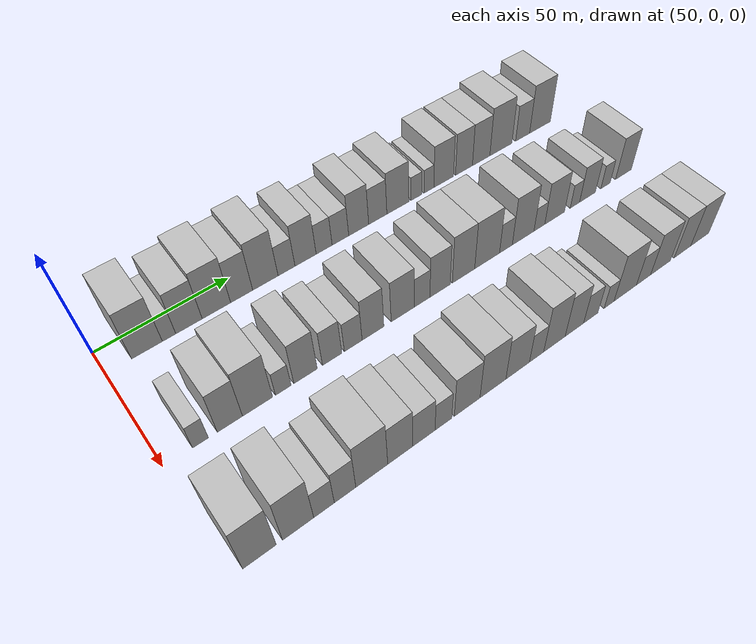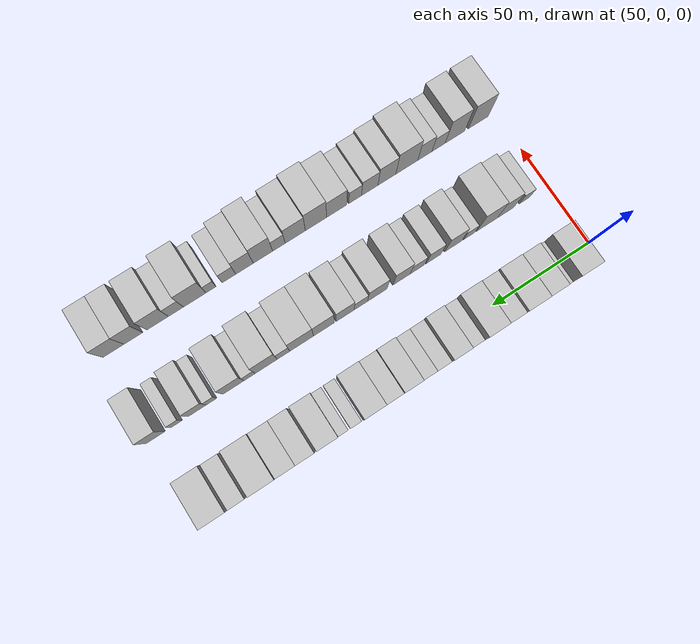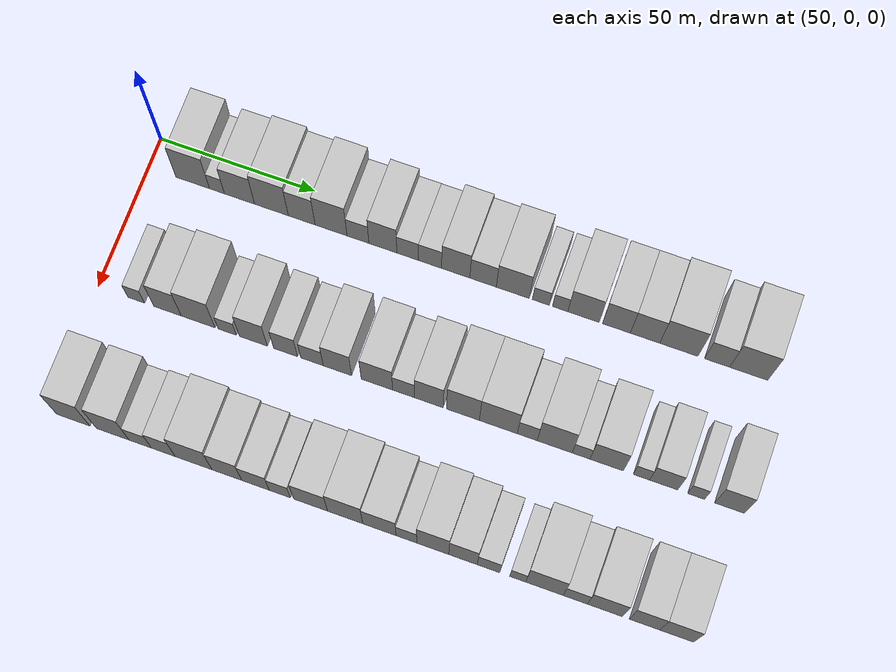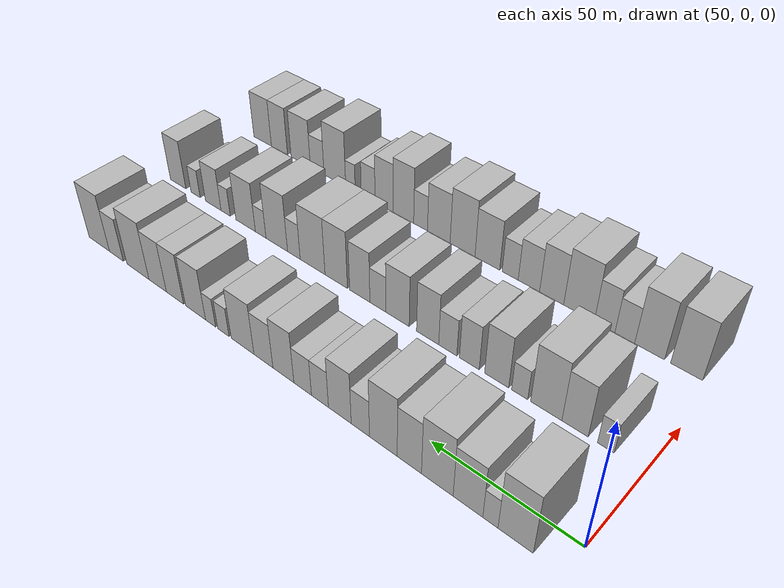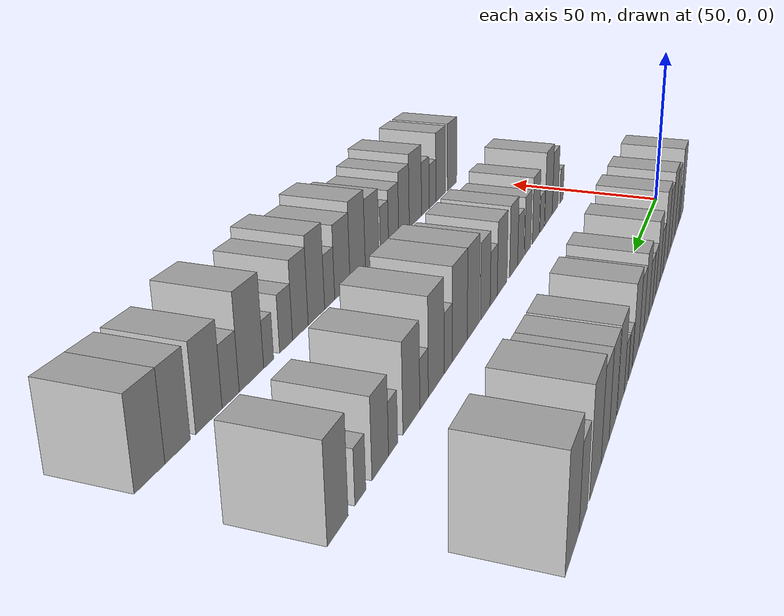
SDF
<sdf version="1.6">
 <world name="default">
  <model name="building_47">
   <static>1</static>
   <pose>50.0000 14.3756 0 0.000000 0.000000 0.000000</pose>
   <link name="link">
    <pose>0 0 12.00 0 0 0</pose>
    <collision name="collision"><geometry><box><size>20.0000 10.8852 24.0000</size></box></geometry></collision>
    <visual name="visual">
     <cast_shadows>0</cast_shadows>
     <geometry><box><size>20.0000 10.8852 24.0000</size></box></geometry>
     <material>
      <script>
       <uri>model://HANNAS_wall/materials/scripts</uri>
       <uri>model://HANNAS_wall/materials/textures</uri>
       <name>vrc/HANNAS_wall</name>
      </script>
     </material>
    </visual>
   </link>
  </model>
  <model name="building_48">
   <static>1</static>
   <pose>50.0000 22.2408 0 0.000000 0.000000 0.000000</pose>
   <link name="link">
    <pose>0 0 6.00 0 0 0</pose>
    <collision name="collision"><geometry><box><size>20.0000 4.8451 12.0000</size></box></geometry></collision>
    <visual name="visual">
     <cast_shadows>0</cast_shadows>
     <geometry><box><size>20.0000 4.8451 12.0000</size></box></geometry>
     <material>
      <script>
       <uri>model://HANNAS_wall/materials/scripts</uri>
       <uri>model://HANNAS_wall/materials/textures</uri>
       <name>vrc/HANNAS_wall</name>
      </script>
     </material>
    </visual>
   </link>
  </model>
  <model name="building_49">
   <static>1</static>
   <pose>50.0000 29.5341 0 0.000000 0.000000 0.000000</pose>
   <link name="link">
    <pose>0 0 10.50 0 0 0</pose>
    <collision name="collision"><geometry><box><size>20.0000 9.7415 21.0000</size></box></geometry></collision>
    <visual name="visual">
     <cast_shadows>0</cast_shadows>
     <geometry><box><size>20.0000 9.7415 21.0000</size></box></geometry>
     <material>
      <script>
       <uri>model://HANNAS_wall/materials/scripts</uri>
       <uri>model://HANNAS_wall/materials/textures</uri>
       <name>vrc/HANNAS_wall</name>
      </script>
     </material>
    </visual>
   </link>
  </model>
  <model name="building_50">
   <static>1</static>
   <pose>50.0000 39.8202 0 0.000000 0.000000 0.000000</pose>
   <link name="link">
    <pose>0 0 12.00 0 0 0</pose>
    <collision name="collision"><geometry><box><size>20.0000 10.8306 24.0000</size></box></geometry></collision>
    <visual name="visual">
     <cast_shadows>0</cast_shadows>
     <geometry><box><size>20.0000 10.8306 24.0000</size></box></geometry>
     <material>
      <script>
       <uri>model://HANNAS_wall/materials/scripts</uri>
       <uri>model://HANNAS_wall/materials/textures</uri>
       <name>vrc/HANNAS_wall</name>
      </script>
     </material>
    </visual>
   </link>
  </model>
  <model name="building_51">
   <static>1</static>
   <pose>50.0000 49.5465 0 0.000000 0.000000 0.000000</pose>
   <link name="link">
    <pose>0 0 10.50 0 0 0</pose>
    <collision name="collision"><geometry><box><size>20.0000 8.6221 21.0000</size></box></geometry></collision>
    <visual name="visual">
     <cast_shadows>0</cast_shadows>
     <geometry><box><size>20.0000 8.6221 21.0000</size></box></geometry>
     <material>
      <script>
       <uri>model://HANNAS_wall/materials/scripts</uri>
       <uri>model://HANNAS_wall/materials/textures</uri>
       <name>vrc/HANNAS_wall</name>
      </script>
     </material>
    </visual>
   </link>
  </model>
  <model name="building_52">
   <static>1</static>
   <pose>50.0000 58.9606 0 0.000000 0.000000 0.000000</pose>
   <link name="link">
    <pose>0 0 12.00 0 0 0</pose>
    <collision name="collision"><geometry><box><size>20.0000 10.2061 24.0000</size></box></geometry></collision>
    <visual name="visual">
     <cast_shadows>0</cast_shadows>
     <geometry><box><size>20.0000 10.2061 24.0000</size></box></geometry>
     <material>
      <script>
       <uri>model://HANNAS_wall/materials/scripts</uri>
       <uri>model://HANNAS_wall/materials/textures</uri>
       <name>vrc/HANNAS_wall</name>
      </script>
     </material>
    </visual>
   </link>
  </model>
  <model name="building_53">
   <static>1</static>
   <pose>50.0000 67.5459 0 0.000000 0.000000 0.000000</pose>
   <link name="link">
    <pose>0 0 7.50 0 0 0</pose>
    <collision name="collision"><geometry><box><size>20.0000 6.9645 15.0000</size></box></geometry></collision>
    <visual name="visual">
     <cast_shadows>0</cast_shadows>
     <geometry><box><size>20.0000 6.9645 15.0000</size></box></geometry>
     <material>
      <script>
       <uri>model://HANNAS_wall/materials/scripts</uri>
       <uri>model://HANNAS_wall/materials/textures</uri>
       <name>vrc/HANNAS_wall</name>
      </script>
     </material>
    </visual>
   </link>
  </model>
  <model name="building_54">
   <static>1</static>
   <pose>50.0000 75.4827 0 0.000000 0.000000 0.000000</pose>
   <link name="link">
    <pose>0 0 10.50 0 0 0</pose>
    <collision name="collision"><geometry><box><size>20.0000 8.9092 21.0000</size></box></geometry></collision>
    <visual name="visual">
     <cast_shadows>0</cast_shadows>
     <geometry><box><size>20.0000 8.9092 21.0000</size></box></geometry>
     <material>
      <script>
       <uri>model://HANNAS_wall/materials/scripts</uri>
       <uri>model://HANNAS_wall/materials/textures</uri>
       <name>vrc/HANNAS_wall</name>
      </script>
     </material>
    </visual>
   </link>
  </model>
  <model name="building_55">
   <static>1</static>
   <pose>50.0000 83.3692 0 0.000000 0.000000 0.000000</pose>
   <link name="link">
    <pose>0 0 7.50 0 0 0</pose>
    <collision name="collision"><geometry><box><size>20.0000 6.8637 15.0000</size></box></geometry></collision>
    <visual name="visual">
     <cast_shadows>0</cast_shadows>
     <geometry><box><size>20.0000 6.8637 15.0000</size></box></geometry>
     <material>
      <script>
       <uri>model://HANNAS_wall/materials/scripts</uri>
       <uri>model://HANNAS_wall/materials/textures</uri>
       <name>vrc/HANNAS_wall</name>
      </script>
     </material>
    </visual>
   </link>
  </model>
  <model name="building_56">
   <static>1</static>
   <pose>50.0000 90.4393 0 0.000000 0.000000 0.000000</pose>
   <link name="link">
    <pose>0 0 7.50 0 0 0</pose>
    <collision name="collision"><geometry><box><size>20.0000 7.2765 15.0000</size></box></geometry></collision>
    <visual name="visual">
     <cast_shadows>0</cast_shadows>
     <geometry><box><size>20.0000 7.2765 15.0000</size></box></geometry>
     <material>
      <script>
       <uri>model://HANNAS_wall/materials/scripts</uri>
       <uri>model://HANNAS_wall/materials/textures</uri>
       <name>vrc/HANNAS_wall</name>
      </script>
     </material>
    </visual>
   </link>
  </model>
  <model name="building_57">
   <static>1</static>
   <pose>50.0000 98.5529 0 0.000000 0.000000 0.000000</pose>
   <link name="link">
    <pose>0 0 10.50 0 0 0</pose>
    <collision name="collision"><geometry><box><size>20.0000 8.9506 21.0000</size></box></geometry></collision>
    <visual name="visual">
     <cast_shadows>0</cast_shadows>
     <geometry><box><size>20.0000 8.9506 21.0000</size></box></geometry>
     <material>
      <script>
       <uri>model://HANNAS_wall/materials/scripts</uri>
       <uri>model://HANNAS_wall/materials/textures</uri>
       <name>vrc/HANNAS_wall</name>
      </script>
     </material>
    </visual>
   </link>
  </model>
  <model name="building_58">
   <static>1</static>
   <pose>50.0000 107.1988 0 0.000000 0.000000 0.000000</pose>
   <link name="link">
    <pose>0 0 9.00 0 0 0</pose>
    <collision name="collision"><geometry><box><size>20.0000 8.3412 18.0000</size></box></geometry></collision>
    <visual name="visual">
     <cast_shadows>0</cast_shadows>
     <geometry><box><size>20.0000 8.3412 18.0000</size></box></geometry>
     <material>
      <script>
       <uri>model://HANNAS_wall/materials/scripts</uri>
       <uri>model://HANNAS_wall/materials/textures</uri>
       <name>vrc/HANNAS_wall</name>
      </script>
     </material>
    </visual>
   </link>
  </model>
  <model name="building_59">
   <static>1</static>
   <pose>50.0000 116.5315 0 0.000000 0.000000 0.000000</pose>
   <link name="link">
    <pose>0 0 10.50 0 0 0</pose>
    <collision name="collision"><geometry><box><size>20.0000 10.3242 21.0000</size></box></geometry></collision>
    <visual name="visual">
     <cast_shadows>0</cast_shadows>
     <geometry><box><size>20.0000 10.3242 21.0000</size></box></geometry>
     <material>
      <script>
       <uri>model://HANNAS_wall/materials/scripts</uri>
       <uri>model://HANNAS_wall/materials/textures</uri>
       <name>vrc/HANNAS_wall</name>
      </script>
     </material>
    </visual>
   </link>
  </model>
  <model name="building_60">
   <static>1</static>
   <pose>50.0000 125.3416 0 0.000000 0.000000 0.000000</pose>
   <link name="link">
    <pose>0 0 6.00 0 0 0</pose>
    <collision name="collision"><geometry><box><size>20.0000 5.2962 12.0000</size></box></geometry></collision>
    <visual name="visual">
     <cast_shadows>0</cast_shadows>
     <geometry><box><size>20.0000 5.2962 12.0000</size></box></geometry>
     <material>
      <script>
       <uri>model://HANNAS_wall/materials/scripts</uri>
       <uri>model://HANNAS_wall/materials/textures</uri>
       <name>vrc/HANNAS_wall</name>
      </script>
     </material>
    </visual>
   </link>
  </model>
  <model name="building_61">
   <static>1</static>
   <pose>50.0000 131.3960 0 0.000000 0.000000 0.000000</pose>
   <link name="link">
    <pose>0 0 6.00 0 0 0</pose>
    <collision name="collision"><geometry><box><size>20.0000 4.8125 12.0000</size></box></geometry></collision>
    <visual name="visual">
     <cast_shadows>0</cast_shadows>
     <geometry><box><size>20.0000 4.8125 12.0000</size></box></geometry>
     <material>
      <script>
       <uri>model://HANNAS_wall/materials/scripts</uri>
       <uri>model://HANNAS_wall/materials/textures</uri>
       <name>vrc/HANNAS_wall</name>
      </script>
     </material>
    </visual>
   </link>
  </model>
  <model name="building_62">
   <static>1</static>
   <pose>50.0000 138.6924 0 0.000000 0.000000 0.000000</pose>
   <link name="link">
    <pose>0 0 10.50 0 0 0</pose>
    <collision name="collision"><geometry><box><size>20.0000 9.7803 21.0000</size></box></geometry></collision>
    <visual name="visual">
     <cast_shadows>0</cast_shadows>
     <geometry><box><size>20.0000 9.7803 21.0000</size></box></geometry>
     <material>
      <script>
       <uri>model://HANNAS_wall/materials/scripts</uri>
       <uri>model://HANNAS_wall/materials/textures</uri>
       <name>vrc/HANNAS_wall</name>
      </script>
     </material>
    </visual>
   </link>
  </model>
  <model name="building_63">
   <static>1</static>
   <pose>50.0000 148.9094 0 0.000000 0.000000 0.000000</pose>
   <link name="link">
    <pose>0 0 10.50 0 0 0</pose>
    <collision name="collision"><geometry><box><size>20.0000 8.6538 21.0000</size></box></geometry></collision>
    <visual name="visual">
     <cast_shadows>0</cast_shadows>
     <geometry><box><size>20.0000 8.6538 21.0000</size></box></geometry>
     <material>
      <script>
       <uri>model://HANNAS_wall/materials/scripts</uri>
       <uri>model://HANNAS_wall/materials/textures</uri>
       <name>vrc/HANNAS_wall</name>
      </script>
     </material>
    </visual>
   </link>
  </model>
  <model name="building_64">
   <static>1</static>
   <pose>50.0000 157.7928 0 0.000000 0.000000 0.000000</pose>
   <link name="link">
    <pose>0 0 10.50 0 0 0</pose>
    <collision name="collision"><geometry><box><size>20.0000 9.1129 21.0000</size></box></geometry></collision>
    <visual name="visual">
     <cast_shadows>0</cast_shadows>
     <geometry><box><size>20.0000 9.1129 21.0000</size></box></geometry>
     <material>
      <script>
       <uri>model://HANNAS_wall/materials/scripts</uri>
       <uri>model://HANNAS_wall/materials/textures</uri>
       <name>vrc/HANNAS_wall</name>
      </script>
     </material>
    </visual>
   </link>
  </model>
  <model name="building_65">
   <static>1</static>
   <pose>50.0000 168.2637 0 0.000000 0.000000 0.000000</pose>
   <link name="link">
    <pose>0 0 12.00 0 0 0</pose>
    <collision name="collision"><geometry><box><size>20.0000 11.8289 24.0000</size></box></geometry></collision>
    <visual name="visual">
     <cast_shadows>0</cast_shadows>
     <geometry><box><size>20.0000 11.8289 24.0000</size></box></geometry>
     <material>
      <script>
       <uri>model://HANNAS_wall/materials/scripts</uri>
       <uri>model://HANNAS_wall/materials/textures</uri>
       <name>vrc/HANNAS_wall</name>
      </script>
     </material>
    </visual>
   </link>
  </model>
  <model name="building_66">
   <static>1</static>
   <pose>50.0000 180.0565 0 0.000000 0.000000 0.000000</pose>
   <link name="link">
    <pose>0 0 9.00 0 0 0</pose>
    <collision name="collision"><geometry><box><size>20.0000 7.7568 18.0000</size></box></geometry></collision>
    <visual name="visual">
     <cast_shadows>0</cast_shadows>
     <geometry><box><size>20.0000 7.7568 18.0000</size></box></geometry>
     <material>
      <script>
       <uri>model://HANNAS_wall/materials/scripts</uri>
       <uri>model://HANNAS_wall/materials/textures</uri>
       <name>vrc/HANNAS_wall</name>
      </script>
     </material>
    </visual>
   </link>
  </model>
  <model name="building_67">
   <static>1</static>
   <pose>50.0000 189.7821 0 0.000000 0.000000 0.000000</pose>
   <link name="link">
    <pose>0 0 12.00 0 0 0</pose>
    <collision name="collision"><geometry><box><size>20.0000 11.6945 24.0000</size></box></geometry></collision>
    <visual name="visual">
     <cast_shadows>0</cast_shadows>
     <geometry><box><size>20.0000 11.6945 24.0000</size></box></geometry>
     <material>
      <script>
       <uri>model://HANNAS_wall/materials/scripts</uri>
       <uri>model://HANNAS_wall/materials/textures</uri>
       <name>vrc/HANNAS_wall</name>
      </script>
     </material>
    </visual>
   </link>
  </model>
  <model name="building_137">
   <static>1</static>
   <pose>90.0000 12.3250 0 0.000000 0.000000 0.000000</pose>
   <link name="link">
    <pose>0 0 6.00 0 0 0</pose>
    <collision name="collision"><geometry><box><size>20.0000 5.3311 12.0000</size></box></geometry></collision>
    <visual name="visual">
     <cast_shadows>0</cast_shadows>
     <geometry><box><size>20.0000 5.3311 12.0000</size></box></geometry>
     <material>
      <script>
       <uri>model://HANNAS_wall/materials/scripts</uri>
       <uri>model://HANNAS_wall/materials/textures</uri>
       <name>vrc/HANNAS_wall</name>
      </script>
     </material>
    </visual>
   </link>
  </model>
  <model name="building_138">
   <static>1</static>
   <pose>90.0000 22.3408 0 0.000000 0.000000 0.000000</pose>
   <link name="link">
    <pose>0 0 10.50 0 0 0</pose>
    <collision name="collision"><geometry><box><size>20.0000 8.7004 21.0000</size></box></geometry></collision>
    <visual name="visual">
     <cast_shadows>0</cast_shadows>
     <geometry><box><size>20.0000 8.7004 21.0000</size></box></geometry>
     <material>
      <script>
       <uri>model://HANNAS_wall/materials/scripts</uri>
       <uri>model://HANNAS_wall/materials/textures</uri>
       <name>vrc/HANNAS_wall</name>
      </script>
     </material>
    </visual>
   </link>
  </model>
  <model name="building_139">
   <static>1</static>
   <pose>90.0000 32.0505 0 0.000000 0.000000 0.000000</pose>
   <link name="link">
    <pose>0 0 12.00 0 0 0</pose>
    <collision name="collision"><geometry><box><size>20.0000 10.7191 24.0000</size></box></geometry></collision>
    <visual name="visual">
     <cast_shadows>0</cast_shadows>
     <geometry><box><size>20.0000 10.7191 24.0000</size></box></geometry>
     <material>
      <script>
       <uri>model://HANNAS_wall/materials/scripts</uri>
       <uri>model://HANNAS_wall/materials/textures</uri>
       <name>vrc/HANNAS_wall</name>
      </script>
     </material>
    </visual>
   </link>
  </model>
  <model name="building_140">
   <static>1</static>
   <pose>90.0000 41.2873 0 0.000000 0.000000 0.000000</pose>
   <link name="link">
    <pose>0 0 6.00 0 0 0</pose>
    <collision name="collision"><geometry><box><size>20.0000 5.7545 12.0000</size></box></geometry></collision>
    <visual name="visual">
     <cast_shadows>0</cast_shadows>
     <geometry><box><size>20.0000 5.7545 12.0000</size></box></geometry>
     <material>
      <script>
       <uri>model://HANNAS_wall/materials/scripts</uri>
       <uri>model://HANNAS_wall/materials/textures</uri>
       <name>vrc/HANNAS_wall</name>
      </script>
     </material>
    </visual>
   </link>
  </model>
  <model name="building_141">
   <static>1</static>
   <pose>90.0000 49.5667 0 0.000000 0.000000 0.000000</pose>
   <link name="link">
    <pose>0 0 10.50 0 0 0</pose>
    <collision name="collision"><geometry><box><size>20.0000 8.8042 21.0000</size></box></geometry></collision>
    <visual name="visual">
     <cast_shadows>0</cast_shadows>
     <geometry><box><size>20.0000 8.8042 21.0000</size></box></geometry>
     <material>
      <script>
       <uri>model://HANNAS_wall/materials/scripts</uri>
       <uri>model://HANNAS_wall/materials/textures</uri>
       <name>vrc/HANNAS_wall</name>
      </script>
     </material>
    </visual>
   </link>
  </model>
  <model name="building_142">
   <static>1</static>
   <pose>90.0000 59.7171 0 0.000000 0.000000 0.000000</pose>
   <link name="link">
    <pose>0 0 9.00 0 0 0</pose>
    <collision name="collision"><geometry><box><size>20.0000 7.4967 18.0000</size></box></geometry></collision>
    <visual name="visual">
     <cast_shadows>0</cast_shadows>
     <geometry><box><size>20.0000 7.4967 18.0000</size></box></geometry>
     <material>
      <script>
       <uri>model://HANNAS_wall/materials/scripts</uri>
       <uri>model://HANNAS_wall/materials/textures</uri>
       <name>vrc/HANNAS_wall</name>
      </script>
     </material>
    </visual>
   </link>
  </model>
  <model name="building_143">
   <static>1</static>
   <pose>90.0000 68.0045 0 0.000000 0.000000 0.000000</pose>
   <link name="link">
    <pose>0 0 7.50 0 0 0</pose>
    <collision name="collision"><geometry><box><size>20.0000 7.0781 15.0000</size></box></geometry></collision>
    <visual name="visual">
     <cast_shadows>0</cast_shadows>
     <geometry><box><size>20.0000 7.0781 15.0000</size></box></geometry>
     <material>
      <script>
       <uri>model://HANNAS_wall/materials/scripts</uri>
       <uri>model://HANNAS_wall/materials/textures</uri>
       <name>vrc/HANNAS_wall</name>
      </script>
     </material>
    </visual>
   </link>
  </model>
  <model name="building_144">
   <static>1</static>
   <pose>90.0000 75.9724 0 0.000000 0.000000 0.000000</pose>
   <link name="link">
    <pose>0 0 10.50 0 0 0</pose>
    <collision name="collision"><geometry><box><size>20.0000 8.8576 21.0000</size></box></geometry></collision>
    <visual name="visual">
     <cast_shadows>0</cast_shadows>
     <geometry><box><size>20.0000 8.8576 21.0000</size></box></geometry>
     <material>
      <script>
       <uri>model://HANNAS_wall/materials/scripts</uri>
       <uri>model://HANNAS_wall/materials/textures</uri>
       <name>vrc/HANNAS_wall</name>
      </script>
     </material>
    </visual>
   </link>
  </model>
  <model name="building_145">
   <static>1</static>
   <pose>90.0000 88.2968 0 0.000000 0.000000 0.000000</pose>
   <link name="link">
    <pose>0 0 10.50 0 0 0</pose>
    <collision name="collision"><geometry><box><size>20.0000 9.7913 21.0000</size></box></geometry></collision>
    <visual name="visual">
     <cast_shadows>0</cast_shadows>
     <geometry><box><size>20.0000 9.7913 21.0000</size></box></geometry>
     <material>
      <script>
       <uri>model://HANNAS_wall/materials/scripts</uri>
       <uri>model://HANNAS_wall/materials/textures</uri>
       <name>vrc/HANNAS_wall</name>
      </script>
     </material>
    </visual>
   </link>
  </model>
  <model name="building_146">
   <static>1</static>
   <pose>90.0000 96.5865 0 0.000000 0.000000 0.000000</pose>
   <link name="link">
    <pose>0 0 7.50 0 0 0</pose>
    <collision name="collision"><geometry><box><size>20.0000 6.7882 15.0000</size></box></geometry></collision>
    <visual name="visual">
     <cast_shadows>0</cast_shadows>
     <geometry><box><size>20.0000 6.7882 15.0000</size></box></geometry>
     <material>
      <script>
       <uri>model://HANNAS_wall/materials/scripts</uri>
       <uri>model://HANNAS_wall/materials/textures</uri>
       <name>vrc/HANNAS_wall</name>
      </script>
     </material>
    </visual>
   </link>
  </model>
  <model name="building_147">
   <static>1</static>
   <pose>90.0000 104.4311 0 0.000000 0.000000 0.000000</pose>
   <link name="link">
    <pose>0 0 10.50 0 0 0</pose>
    <collision name="collision"><geometry><box><size>20.0000 8.9009 21.0000</size></box></geometry></collision>
    <visual name="visual">
     <cast_shadows>0</cast_shadows>
     <geometry><box><size>20.0000 8.9009 21.0000</size></box></geometry>
     <material>
      <script>
       <uri>model://HANNAS_wall/materials/scripts</uri>
       <uri>model://HANNAS_wall/materials/textures</uri>
       <name>vrc/HANNAS_wall</name>
      </script>
     </material>
    </visual>
   </link>
  </model>
  <model name="building_148">
   <static>1</static>
   <pose>90.0000 114.9832 0 0.000000 0.000000 0.000000</pose>
   <link name="link">
    <pose>0 0 12.00 0 0 0</pose>
    <collision name="collision"><geometry><box><size>20.0000 10.2034 24.0000</size></box></geometry></collision>
    <visual name="visual">
     <cast_shadows>0</cast_shadows>
     <geometry><box><size>20.0000 10.2034 24.0000</size></box></geometry>
     <material>
      <script>
       <uri>model://HANNAS_wall/materials/scripts</uri>
       <uri>model://HANNAS_wall/materials/textures</uri>
       <name>vrc/HANNAS_wall</name>
      </script>
     </material>
    </visual>
   </link>
  </model>
  <model name="building_149">
   <static>1</static>
   <pose>90.0000 125.9275 0 0.000000 0.000000 0.000000</pose>
   <link name="link">
    <pose>0 0 12.00 0 0 0</pose>
    <collision name="collision"><geometry><box><size>20.0000 11.6853 24.0000</size></box></geometry></collision>
    <visual name="visual">
     <cast_shadows>0</cast_shadows>
     <geometry><box><size>20.0000 11.6853 24.0000</size></box></geometry>
     <material>
      <script>
       <uri>model://HANNAS_wall/materials/scripts</uri>
       <uri>model://HANNAS_wall/materials/textures</uri>
       <name>vrc/HANNAS_wall</name>
      </script>
     </material>
    </visual>
   </link>
  </model>
  <model name="building_150">
   <static>1</static>
   <pose>90.0000 134.8440 0 0.000000 0.000000 0.000000</pose>
   <link name="link">
    <pose>0 0 7.50 0 0 0</pose>
    <collision name="collision"><geometry><box><size>20.0000 6.1477 15.0000</size></box></geometry></collision>
    <visual name="visual">
     <cast_shadows>0</cast_shadows>
     <geometry><box><size>20.0000 6.1477 15.0000</size></box></geometry>
     <material>
      <script>
       <uri>model://HANNAS_wall/materials/scripts</uri>
       <uri>model://HANNAS_wall/materials/textures</uri>
       <name>vrc/HANNAS_wall</name>
      </script>
     </material>
    </visual>
   </link>
  </model>
  <model name="building_151">
   <static>1</static>
   <pose>90.0000 143.2712 0 0.000000 0.000000 0.000000</pose>
   <link name="link">
    <pose>0 0 12.00 0 0 0</pose>
    <collision name="collision"><geometry><box><size>20.0000 10.7068 24.0000</size></box></geometry></collision>
    <visual name="visual">
     <cast_shadows>0</cast_shadows>
     <geometry><box><size>20.0000 10.7068 24.0000</size></box></geometry>
     <material>
      <script>
       <uri>model://HANNAS_wall/materials/scripts</uri>
       <uri>model://HANNAS_wall/materials/textures</uri>
       <name>vrc/HANNAS_wall</name>
      </script>
     </material>
    </visual>
   </link>
  </model>
  <model name="building_152">
   <static>1</static>
   <pose>90.0000 151.3386 0 0.000000 0.000000 0.000000</pose>
   <link name="link">
    <pose>0 0 6.00 0 0 0</pose>
    <collision name="collision"><geometry><box><size>20.0000 5.4279 12.0000</size></box></geometry></collision>
    <visual name="visual">
     <cast_shadows>0</cast_shadows>
     <geometry><box><size>20.0000 5.4279 12.0000</size></box></geometry>
     <material>
      <script>
       <uri>model://HANNAS_wall/materials/scripts</uri>
       <uri>model://HANNAS_wall/materials/textures</uri>
       <name>vrc/HANNAS_wall</name>
      </script>
     </material>
    </visual>
   </link>
  </model>
  <model name="building_153">
   <static>1</static>
   <pose>90.0000 159.1424 0 0.000000 0.000000 0.000000</pose>
   <link name="link">
    <pose>0 0 10.50 0 0 0</pose>
    <collision name="collision"><geometry><box><size>20.0000 10.1797 21.0000</size></box></geometry></collision>
    <visual name="visual">
     <cast_shadows>0</cast_shadows>
     <geometry><box><size>20.0000 10.1797 21.0000</size></box></geometry>
     <material>
      <script>
       <uri>model://HANNAS_wall/materials/scripts</uri>
       <uri>model://HANNAS_wall/materials/textures</uri>
       <name>vrc/HANNAS_wall</name>
      </script>
     </material>
    </visual>
   </link>
  </model>
  <model name="building_154">
   <static>1</static>
   <pose>90.0000 169.7015 0 0.000000 0.000000 0.000000</pose>
   <link name="link">
    <pose>0 0 6.00 0 0 0</pose>
    <collision name="collision"><geometry><box><size>20.0000 4.9384 12.0000</size></box></geometry></collision>
    <visual name="visual">
     <cast_shadows>0</cast_shadows>
     <geometry><box><size>20.0000 4.9384 12.0000</size></box></geometry>
     <material>
      <script>
       <uri>model://HANNAS_wall/materials/scripts</uri>
       <uri>model://HANNAS_wall/materials/textures</uri>
       <name>vrc/HANNAS_wall</name>
      </script>
     </material>
    </visual>
   </link>
  </model>
  <model name="building_155">
   <static>1</static>
   <pose>90.0000 176.4495 0 0.000000 0.000000 0.000000</pose>
   <link name="link">
    <pose>0 0 9.00 0 0 0</pose>
    <collision name="collision"><geometry><box><size>20.0000 8.5575 18.0000</size></box></geometry></collision>
    <visual name="visual">
     <cast_shadows>0</cast_shadows>
     <geometry><box><size>20.0000 8.5575 18.0000</size></box></geometry>
     <material>
      <script>
       <uri>model://HANNAS_wall/materials/scripts</uri>
       <uri>model://HANNAS_wall/materials/textures</uri>
       <name>vrc/HANNAS_wall</name>
      </script>
     </material>
    </visual>
   </link>
  </model>
  <model name="building_156">
   <static>1</static>
   <pose>90.0000 186.2856 0 0.000000 0.000000 0.000000</pose>
   <link name="link">
    <pose>0 0 6.00 0 0 0</pose>
    <collision name="collision"><geometry><box><size>20.0000 5.1147 12.0000</size></box></geometry></collision>
    <visual name="visual">
     <cast_shadows>0</cast_shadows>
     <geometry><box><size>20.0000 5.1147 12.0000</size></box></geometry>
     <material>
      <script>
       <uri>model://HANNAS_wall/materials/scripts</uri>
       <uri>model://HANNAS_wall/materials/textures</uri>
       <name>vrc/HANNAS_wall</name>
      </script>
     </material>
    </visual>
   </link>
  </model>
  <model name="building_157">
   <static>1</static>
   <pose>90.0000 196.3096 0 0.000000 0.000000 0.000000</pose>
   <link name="link">
    <pose>0 0 10.50 0 0 0</pose>
    <collision name="collision"><geometry><box><size>20.0000 8.9333 21.0000</size></box></geometry></collision>
    <visual name="visual">
     <cast_shadows>0</cast_shadows>
     <geometry><box><size>20.0000 8.9333 21.0000</size></box></geometry>
     <material>
      <script>
       <uri>model://HANNAS_wall/materials/scripts</uri>
       <uri>model://HANNAS_wall/materials/textures</uri>
       <name>vrc/HANNAS_wall</name>
      </script>
     </material>
    </visual>
   </link>
  </model>
  <model name="building_211">
   <static>1</static>
   <pose>130.0000 8.8393 0 0.000000 0.000000 0.000000</pose>
   <link name="link">
    <pose>0 0 12.00 0 0 0</pose>
    <collision name="collision"><geometry><box><size>20.0000 10.5561 24.0000</size></box></geometry></collision>
    <visual name="visual">
     <cast_shadows>0</cast_shadows>
     <geometry><box><size>20.0000 10.5561 24.0000</size></box></geometry>
     <material>
      <script>
       <uri>model://HANNAS_wall/materials/scripts</uri>
       <uri>model://HANNAS_wall/materials/textures</uri>
       <name>vrc/HANNAS_wall</name>
      </script>
     </material>
    </visual>
   </link>
  </model>
  <model name="building_212">
   <static>1</static>
   <pose>130.0000 21.2494 0 0.000000 0.000000 0.000000</pose>
   <link name="link">
    <pose>0 0 12.00 0 0 0</pose>
    <collision name="collision"><geometry><box><size>20.0000 10.2641 24.0000</size></box></geometry></collision>
    <visual name="visual">
     <cast_shadows>0</cast_shadows>
     <geometry><box><size>20.0000 10.2641 24.0000</size></box></geometry>
     <material>
      <script>
       <uri>model://HANNAS_wall/materials/scripts</uri>
       <uri>model://HANNAS_wall/materials/textures</uri>
       <name>vrc/HANNAS_wall</name>
      </script>
     </material>
    </visual>
   </link>
  </model>
  <model name="building_213">
   <static>1</static>
   <pose>130.0000 29.8639 0 0.000000 0.000000 0.000000</pose>
   <link name="link">
    <pose>0 0 7.50 0 0 0</pose>
    <collision name="collision"><geometry><box><size>20.0000 6.9650 15.0000</size></box></geometry></collision>
    <visual name="visual">
     <cast_shadows>0</cast_shadows>
     <geometry><box><size>20.0000 6.9650 15.0000</size></box></geometry>
     <material>
      <script>
       <uri>model://HANNAS_wall/materials/scripts</uri>
       <uri>model://HANNAS_wall/materials/textures</uri>
       <name>vrc/HANNAS_wall</name>
      </script>
     </material>
    </visual>
   </link>
  </model>
  <model name="building_214">
   <static>1</static>
   <pose>130.0000 37.0704 0 0.000000 0.000000 0.000000</pose>
   <link name="link">
    <pose>0 0 9.00 0 0 0</pose>
    <collision name="collision"><geometry><box><size>20.0000 7.4481 18.0000</size></box></geometry></collision>
    <visual name="visual">
     <cast_shadows>0</cast_shadows>
     <geometry><box><size>20.0000 7.4481 18.0000</size></box></geometry>
     <material>
      <script>
       <uri>model://HANNAS_wall/materials/scripts</uri>
       <uri>model://HANNAS_wall/materials/textures</uri>
       <name>vrc/HANNAS_wall</name>
      </script>
     </material>
    </visual>
   </link>
  </model>
  <model name="building_215">
   <static>1</static>
   <pose>130.0000 46.5121 0 0.000000 0.000000 0.000000</pose>
   <link name="link">
    <pose>0 0 12.00 0 0 0</pose>
    <collision name="collision"><geometry><box><size>20.0000 11.4354 24.0000</size></box></geometry></collision>
    <visual name="visual">
     <cast_shadows>0</cast_shadows>
     <geometry><box><size>20.0000 11.4354 24.0000</size></box></geometry>
     <material>
      <script>
       <uri>model://HANNAS_wall/materials/scripts</uri>
       <uri>model://HANNAS_wall/materials/textures</uri>
       <name>vrc/HANNAS_wall</name>
      </script>
     </material>
    </visual>
   </link>
  </model>
  <model name="building_216">
   <static>1</static>
   <pose>130.0000 56.8766 0 0.000000 0.000000 0.000000</pose>
   <link name="link">
    <pose>0 0 10.50 0 0 0</pose>
    <collision name="collision"><geometry><box><size>20.0000 9.2936 21.0000</size></box></geometry></collision>
    <visual name="visual">
     <cast_shadows>0</cast_shadows>
     <geometry><box><size>20.0000 9.2936 21.0000</size></box></geometry>
     <material>
      <script>
       <uri>model://HANNAS_wall/materials/scripts</uri>
       <uri>model://HANNAS_wall/materials/textures</uri>
       <name>vrc/HANNAS_wall</name>
      </script>
     </material>
    </visual>
   </link>
  </model>
  <model name="building_217">
   <static>1</static>
   <pose>130.0000 65.7766 0 0.000000 0.000000 0.000000</pose>
   <link name="link">
    <pose>0 0 9.00 0 0 0</pose>
    <collision name="collision"><geometry><box><size>20.0000 8.5065 18.0000</size></box></geometry></collision>
    <visual name="visual">
     <cast_shadows>0</cast_shadows>
     <geometry><box><size>20.0000 8.5065 18.0000</size></box></geometry>
     <material>
      <script>
       <uri>model://HANNAS_wall/materials/scripts</uri>
       <uri>model://HANNAS_wall/materials/textures</uri>
       <name>vrc/HANNAS_wall</name>
      </script>
     </material>
    </visual>
   </link>
  </model>
  <model name="building_218">
   <static>1</static>
   <pose>130.0000 73.2891 0 0.000000 0.000000 0.000000</pose>
   <link name="link">
    <pose>0 0 7.50 0 0 0</pose>
    <collision name="collision"><geometry><box><size>20.0000 6.5184 15.0000</size></box></geometry></collision>
    <visual name="visual">
     <cast_shadows>0</cast_shadows>
     <geometry><box><size>20.0000 6.5184 15.0000</size></box></geometry>
     <material>
      <script>
       <uri>model://HANNAS_wall/materials/scripts</uri>
       <uri>model://HANNAS_wall/materials/textures</uri>
       <name>vrc/HANNAS_wall</name>
      </script>
     </material>
    </visual>
   </link>
  </model>
  <model name="building_219">
   <static>1</static>
   <pose>130.0000 82.7307 0 0.000000 0.000000 0.000000</pose>
   <link name="link">
    <pose>0 0 10.50 0 0 0</pose>
    <collision name="collision"><geometry><box><size>20.0000 10.3649 21.0000</size></box></geometry></collision>
    <visual name="visual">
     <cast_shadows>0</cast_shadows>
     <geometry><box><size>20.0000 10.3649 21.0000</size></box></geometry>
     <material>
      <script>
       <uri>model://HANNAS_wall/materials/scripts</uri>
       <uri>model://HANNAS_wall/materials/textures</uri>
       <name>vrc/HANNAS_wall</name>
      </script>
     </material>
    </visual>
   </link>
  </model>
  <model name="building_220">
   <static>1</static>
   <pose>130.0000 93.3143 0 0.000000 0.000000 0.000000</pose>
   <link name="link">
    <pose>0 0 12.00 0 0 0</pose>
    <collision name="collision"><geometry><box><size>20.0000 10.8022 24.0000</size></box></geometry></collision>
    <visual name="visual">
     <cast_shadows>0</cast_shadows>
     <geometry><box><size>20.0000 10.8022 24.0000</size></box></geometry>
     <material>
      <script>
       <uri>model://HANNAS_wall/materials/scripts</uri>
       <uri>model://HANNAS_wall/materials/textures</uri>
       <name>vrc/HANNAS_wall</name>
      </script>
     </material>
    </visual>
   </link>
  </model>
  <model name="building_221">
   <static>1</static>
   <pose>130.0000 103.7897 0 0.000000 0.000000 0.000000</pose>
   <link name="link">
    <pose>0 0 10.50 0 0 0</pose>
    <collision name="collision"><geometry><box><size>20.0000 10.1486 21.0000</size></box></geometry></collision>
    <visual name="visual">
     <cast_shadows>0</cast_shadows>
     <geometry><box><size>20.0000 10.1486 21.0000</size></box></geometry>
     <material>
      <script>
       <uri>model://HANNAS_wall/materials/scripts</uri>
       <uri>model://HANNAS_wall/materials/textures</uri>
       <name>vrc/HANNAS_wall</name>
      </script>
     </material>
    </visual>
   </link>
  </model>
  <model name="building_222">
   <static>1</static>
   <pose>130.0000 112.0144 0 0.000000 0.000000 0.000000</pose>
   <link name="link">
    <pose>0 0 7.50 0 0 0</pose>
    <collision name="collision"><geometry><box><size>20.0000 6.3008 15.0000</size></box></geometry></collision>
    <visual name="visual">
     <cast_shadows>0</cast_shadows>
     <geometry><box><size>20.0000 6.3008 15.0000</size></box></geometry>
     <material>
      <script>
       <uri>model://HANNAS_wall/materials/scripts</uri>
       <uri>model://HANNAS_wall/materials/textures</uri>
       <name>vrc/HANNAS_wall</name>
      </script>
     </material>
    </visual>
   </link>
  </model>
  <model name="building_223">
   <static>1</static>
   <pose>130.0000 120.0126 0 0.000000 0.000000 0.000000</pose>
   <link name="link">
    <pose>0 0 12.00 0 0 0</pose>
    <collision name="collision"><geometry><box><size>20.0000 9.6955 24.0000</size></box></geometry></collision>
    <visual name="visual">
     <cast_shadows>0</cast_shadows>
     <geometry><box><size>20.0000 9.6955 24.0000</size></box></geometry>
     <material>
      <script>
       <uri>model://HANNAS_wall/materials/scripts</uri>
       <uri>model://HANNAS_wall/materials/textures</uri>
       <name>vrc/HANNAS_wall</name>
      </script>
     </material>
    </visual>
   </link>
  </model>
  <model name="building_224">
   <static>1</static>
   <pose>130.0000 129.1813 0 0.000000 0.000000 0.000000</pose>
   <link name="link">
    <pose>0 0 10.50 0 0 0</pose>
    <collision name="collision"><geometry><box><size>20.0000 8.6419 21.0000</size></box></geometry></collision>
    <visual name="visual">
     <cast_shadows>0</cast_shadows>
     <geometry><box><size>20.0000 8.6419 21.0000</size></box></geometry>
     <material>
      <script>
       <uri>model://HANNAS_wall/materials/scripts</uri>
       <uri>model://HANNAS_wall/materials/textures</uri>
       <name>vrc/HANNAS_wall</name>
      </script>
     </material>
    </visual>
   </link>
  </model>
  <model name="building_225">
   <static>1</static>
   <pose>130.0000 136.9025 0 0.000000 0.000000 0.000000</pose>
   <link name="link">
    <pose>0 0 7.50 0 0 0</pose>
    <collision name="collision"><geometry><box><size>20.0000 6.8005 15.0000</size></box></geometry></collision>
    <visual name="visual">
     <cast_shadows>0</cast_shadows>
     <geometry><box><size>20.0000 6.8005 15.0000</size></box></geometry>
     <material>
      <script>
       <uri>model://HANNAS_wall/materials/scripts</uri>
       <uri>model://HANNAS_wall/materials/textures</uri>
       <name>vrc/HANNAS_wall</name>
      </script>
     </material>
    </visual>
   </link>
  </model>
  <model name="building_226">
   <static>1</static>
   <pose>130.0000 145.7318 0 0.000000 0.000000 0.000000</pose>
   <link name="link">
    <pose>0 0 6.00 0 0 0</pose>
    <collision name="collision"><geometry><box><size>20.0000 4.8581 12.0000</size></box></geometry></collision>
    <visual name="visual">
     <cast_shadows>0</cast_shadows>
     <geometry><box><size>20.0000 4.8581 12.0000</size></box></geometry>
     <material>
      <script>
       <uri>model://HANNAS_wall/materials/scripts</uri>
       <uri>model://HANNAS_wall/materials/textures</uri>
       <name>vrc/HANNAS_wall</name>
      </script>
     </material>
    </visual>
   </link>
  </model>
  <model name="building_227">
   <static>1</static>
   <pose>130.0000 153.7646 0 0.000000 0.000000 0.000000</pose>
   <link name="link">
    <pose>0 0 12.00 0 0 0</pose>
    <collision name="collision"><geometry><box><size>20.0000 11.2075 24.0000</size></box></geometry></collision>
    <visual name="visual">
     <cast_shadows>0</cast_shadows>
     <geometry><box><size>20.0000 11.2075 24.0000</size></box></geometry>
     <material>
      <script>
       <uri>model://HANNAS_wall/materials/scripts</uri>
       <uri>model://HANNAS_wall/materials/textures</uri>
       <name>vrc/HANNAS_wall</name>
      </script>
     </material>
    </visual>
   </link>
  </model>
  <model name="building_228">
   <static>1</static>
   <pose>130.0000 163.0101 0 0.000000 0.000000 0.000000</pose>
   <link name="link">
    <pose>0 0 7.50 0 0 0</pose>
    <collision name="collision"><geometry><box><size>20.0000 7.2834 15.0000</size></box></geometry></collision>
    <visual name="visual">
     <cast_shadows>0</cast_shadows>
     <geometry><box><size>20.0000 7.2834 15.0000</size></box></geometry>
     <material>
      <script>
       <uri>model://HANNAS_wall/materials/scripts</uri>
       <uri>model://HANNAS_wall/materials/textures</uri>
       <name>vrc/HANNAS_wall</name>
      </script>
     </material>
    </visual>
   </link>
  </model>
  <model name="building_229">
   <static>1</static>
   <pose>130.0000 171.8889 0 0.000000 0.000000 0.000000</pose>
   <link name="link">
    <pose>0 0 10.50 0 0 0</pose>
    <collision name="collision"><geometry><box><size>20.0000 10.4742 21.0000</size></box></geometry></collision>
    <visual name="visual">
     <cast_shadows>0</cast_shadows>
     <geometry><box><size>20.0000 10.4742 21.0000</size></box></geometry>
     <material>
      <script>
       <uri>model://HANNAS_wall/materials/scripts</uri>
       <uri>model://HANNAS_wall/materials/textures</uri>
       <name>vrc/HANNAS_wall</name>
      </script>
     </material>
    </visual>
   </link>
  </model>
  <model name="building_230">
   <static>1</static>
   <pose>130.0000 183.6414 0 0.000000 0.000000 0.000000</pose>
   <link name="link">
    <pose>0 0 10.50 0 0 0</pose>
    <collision name="collision"><geometry><box><size>20.0000 9.0307 21.0000</size></box></geometry></collision>
    <visual name="visual">
     <cast_shadows>0</cast_shadows>
     <geometry><box><size>20.0000 9.0307 21.0000</size></box></geometry>
     <material>
      <script>
       <uri>model://HANNAS_wall/materials/scripts</uri>
       <uri>model://HANNAS_wall/materials/textures</uri>
       <name>vrc/HANNAS_wall</name>
      </script>
     </material>
    </visual>
   </link>
  </model>
  <model name="building_231">
   <static>1</static>
   <pose>130.0000 193.1940 0 0.000000 0.000000 0.000000</pose>
   <link name="link">
    <pose>0 0 10.50 0 0 0</pose>
    <collision name="collision"><geometry><box><size>20.0000 10.0745 21.0000</size></box></geometry></collision>
    <visual name="visual">
     <cast_shadows>0</cast_shadows>
     <geometry><box><size>20.0000 10.0745 21.0000</size></box></geometry>
     <material>
      <script>
       <uri>model://HANNAS_wall/materials/scripts</uri>
       <uri>model://HANNAS_wall/materials/textures</uri>
       <name>vrc/HANNAS_wall</name>
      </script>
     </material>
    </visual>
   </link>
  </model>
 </world>
</sdf>
